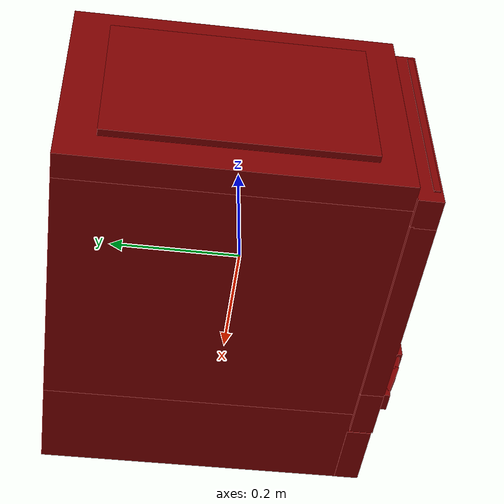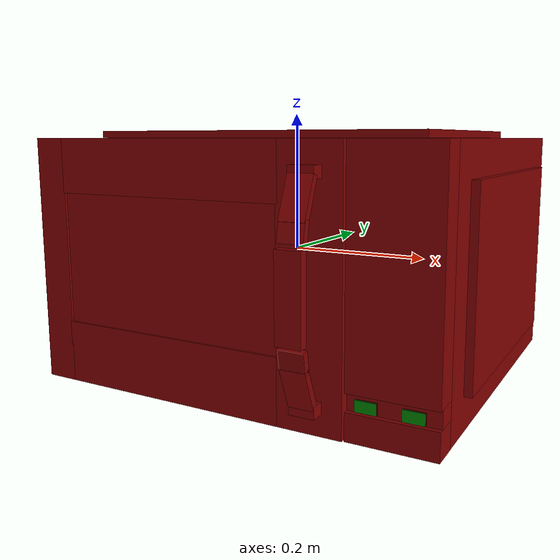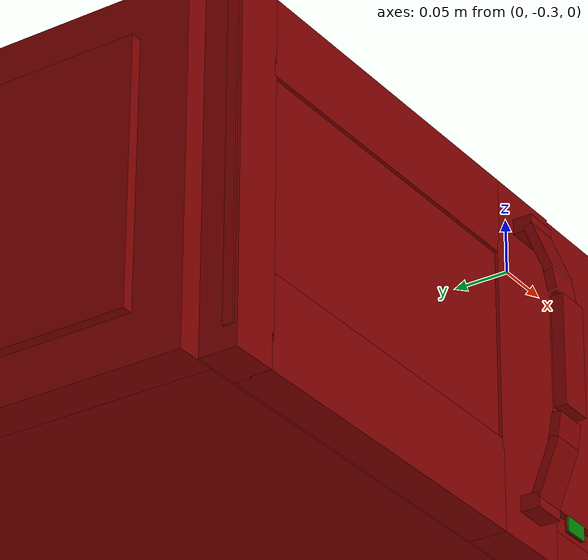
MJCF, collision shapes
<?xml version='1.0' encoding='UTF-8'?>
<mujoco model="model">
  <option timestep="0.002" gravity="0.0 0.0 -9.81"/>
  <compiler angle="radian"/>
  <asset>
    <mesh file="visuals/door.obj" name="door_vis"/>
    <mesh file="visuals/door_Clear.obj" name="door_Clear_vis"/>
    <mesh file="visuals/Body001.obj" name="Body001_vis"/>
    <mesh file="visuals/Button001.obj" name="Button001_vis"/>
    <mesh file="visuals/Button002.obj" name="Button002_vis"/>
    <mesh file="visuals/Disc001.obj" name="Disc001_vis"/>
    <texture file="visuals/T_BC001.png" name="Body001_material" type="2d"/>
    <material name="Body001_material" rgba="1 1 1 1.0" texture="Body001_material" shininess="1" specular="1"/>
    <texture file="visuals/T_BC001.png" name="door_material" type="2d"/>
    <material name="door_material" rgba="1 1 1 1.0" texture="door_material" shininess="1" specular="1"/>
    <texture file="visuals/T_BC001.png" name="door_Clear_material" type="2d"/>
    <material name="door_Clear_material" rgba="1 1 1 0.800000011920929" texture="door_Clear_material" shininess="0.5" specular="0.3103448502657381"/>
    <texture file="visuals/T_BC001.png" name="Button001_material" type="2d"/>
    <material name="Button001_material" rgba="1 1 1 1.0" texture="Button001_material" shininess="2" specular="2"/>
    <texture file="visuals/T_BC001.png" name="Button002_material" type="2d"/>
    <material name="Button002_material" rgba="1 1 1 1.0" texture="Button002_material" shininess="2" specular="2"/>
    <texture file="visuals/T_BC001.png" name="Disc001_material" type="2d"/>
    <material name="Disc001_material" rgba="1 1 1 1.0" texture="Disc001_material" shininess="0.5" specular="0.5"/>
  </asset>
  <default>
    <default class="visual">
      <geom conaffinity="0" contype="0" group="1" type="mesh"/>
    </default>
    <default class="collision">
      <geom group="0" rgba="0.5 0 0 0.5"/>
    </default>
    <default class="spawn">
      <geom group="0" rgba="1 1 1 0.5" contype="0" conaffinity="0"/>
      <site group="0" rgba="1 1 1 0.5"/>
    </default>
    <default class="region">
      <geom group="1" conaffinity="0" contype="0" rgba="0 1 0 0"/>
    </default>
  </default>
  <worldbody>
    <body>
      <body name="object">
        <geom class="collision" type="box" pos="0.2170172929763794 -0.2324933558702469 -0.12825287878513336" size="0.013190911151468754 0.0007031083223409951 0.00708899786695838" quat="1.0 0.0 0.0 0.0" name="start_button" rgba="0.0 0.5 0 0.5"/>
        <geom class="collision" type="box" pos="0.2730391323566437 -0.2324933558702469 -0.128305122256279" size="0.013190911151468754 0.0007031083223409951 0.00708899786695838" quat="1.0 0.0 0.0 0.0" name="stop_button" rgba="0.0 0.5 0 0.5"/>
        <geom class="collision" type="cylinder" pos="-0.06485994160175323 -0.003092189086601138 -0.13669924437999725" size="0.17225393652915955 0.0020208321511745453" quat="1.0 0.0 0.0 0.0" name="tray" rgba="0 1 0 0.5"/>
        <geom mesh="Body001_vis" type="mesh" solimp="0.998 0.998 0.001" solref="0.001 1" friction="0.95 0.3 0.1" class="visual" material="Body001_material"/>
        <geom class="collision" type="box" pos="-0.2810915410518646 0.04335606098175049 -0.004970035515725613" size="0.02083211950957775 0.23652443289756775 0.16998417675495148" quat="1.0 0.0 0.0 0.0"/>
        <geom class="collision" type="box" pos="0.2249555140733719 0.04335606098175049 -0.004970035515725613" size="0.07696817070245743 0.23652443289756775 0.16998417675495148" quat="1.0 0.0 0.0 0.0"/>
        <geom class="collision" type="box" pos="-0.056588929146528244 0.0433560386300087 0.14594468474388123" size="0.019069449976086617 0.23652443289756775 0.20546723902225494" quat="0.70710688829422 -4.7503014855010406e-08 0.7071066498756409 4.750300064415569e-08"/>
        <geom class="collision" type="box" pos="-0.056588925421237946 0.0433560386300087 -0.16193974018096924" size="0.013014478608965874 0.23652443289756775 0.20546723902225494" quat="0.70710688829422 -4.7503014855010406e-08 0.7071066498756409 4.750300064415569e-08"/>
        <geom class="collision" type="box" pos="-0.05658893287181854 0.23112283647060394 -0.009975007735192776" size="0.04875762015581131 0.1417888104915619 0.20546723902225494" quat="0.5000001788139343 0.4999999701976776 0.49999988079071045 0.4999999701976776"/>
        <geom class="collision" type="box" pos="-0.0026048514991998672 0.03995060920715332 0.17033837735652924" size="0.004890400916337967 0.1754380464553833 0.25124871730804443" quat="0.70710688829422 -4.7503014855010406e-08 0.7071066498756409 4.750300064415569e-08"/>
        <geom class="collision" type="box" pos="-0.3070313334465027 0.03993083909153938 -0.004857384599745274" size="0.00526044238358736 0.18542003631591797 0.1247829794883728" quat="1.0 -4.004205956609566e-15 -5.960462701182223e-08 -6.717943534795268e-08"/>
        <geom class="collision" type="box" pos="0.3070269525051117 0.03993083909153938 -0.004857384599745274" size="0.005264845676720142 0.18542003631591797 0.1247829794883728" quat="1.0 -4.004205956609566e-15 -5.960462701182223e-08 -6.717943534795268e-08"/>
        <geom class="collision" type="box" pos="0.24569323658943176 -0.21022270619869232 0.023446135222911835" size="0.05623043701052666 0.018931111320853233 0.14129340648651123" quat="1.0 0.0 0.0 0.0"/>
        <geom class="collision" type="box" pos="0.24569323658943176 -0.21022270619869232 -0.1576344519853592" size="0.05623043701052666 0.018931111320853233 0.017594337463378906" quat="1.0 0.0 0.0 0.0"/>
        <geom class="collision" type="box" pos="0.24569323658943176 -0.2079225480556488 -0.12884315848350525" size="0.05623043701052666 0.01457893755286932 0.011523762717843056" quat="1.0 0.0 0.0 0.0"/>
        <body name="door">
          <joint axis="0.0 0.0 1.0" pos="-0.283446729183197 -0.212793231010437 -0.005244613625109196" limited="true" name="microjoint" range="-1.5707963267948966 0.0" type="hinge" damping="1" frictionloss="1" armature=".01" stiffness="0.05"/>
          <geom mesh="door_vis" type="mesh" solimp="0.998 0.998 0.001" solref="0.001 1" friction="0.95 0.3 0.1" class="visual" material="door_material"/>
          <geom class="collision" type="box" pos="-0.06626242399215698 -0.2195109874010086 0.000930391252040863" size="0.004811004735529423 0.08865528553724289 0.16809029877185822" quat="0.5 0.5 0.5 0.4999999701976776"/>
          <geom class="collision" type="box" pos="-0.25767752528190613 -0.21287856996059418 -0.0052445982582867146" size="0.017992716282606125 0.16998417675495148 0.024036355316638947" quat="0.5000001192092896 0.5 0.4999999701976776 0.4999999403953552"/>
          <geom class="collision" type="box" pos="0.14439988136291504 -0.21287856996059418 -0.0052445996552705765" size="0.017992716282606125 0.16998417675495148 0.042897239327430725" quat="0.5000001192092896 0.5 0.4999999701976776 0.4999999403953552"/>
          <geom class="collision" type="box" pos="-0.06586045026779175 -0.21287858486175537 0.12792454659938812" size="0.017992716282606125 0.16998417675495148 0.03681502491235733" quat="7.472144858411411e-08 0.7071067094802856 0.7071068286895752 3.204871035222823e-08"/>
          <geom class="collision" type="box" pos="-0.06586045026779175 -0.21287858486175537 -0.1322387456893921" size="0.017992716282606125 0.16998417675495148 0.04299004003405571" quat="7.472144858411411e-08 0.7071067094802856 0.7071068286895752 3.204871035222823e-08"/>
          <geom class="collision" type="box" pos="0.14502070844173431 -0.239515021443367 0.12920789420604706" size="0.009858377277851105 0.007453942205756903 0.0165408905595541" quat="0.49999985098838806 0.5 -0.5000001788139343 -0.4999999403953552"/>
          <geom class="collision" type="box" pos="0.14502070844173431 -0.25534072518348694 0.10102148354053497" size="0.027371153235435486 0.004483749158680439 0.0165408905595541" quat="0.1339872181415558 0.6942963004112244 -0.13398760557174683 -0.6942963600158691"/>
          <geom class="collision" type="box" pos="0.14502070844173431 -0.2660098373889923 0.06678104400634766" size="0.013699657283723354 0.004483749158680439 0.0165408905595541" quat="0.06278831511735916 0.7043134570121765 -0.06278905272483826 -0.7043136358261108"/>
          <geom class="collision" type="box" pos="0.14502070844173431 -0.239515021443367 -0.14015492796897888" size="0.009858377277851105 0.007453942205756903 0.0165408905595541" quat="0.5000001192092896 -0.5 0.5 -0.49999988079071045"/>
          <geom class="collision" type="box" pos="0.14502070844173431 -0.25534072518348694 -0.11113370954990387" size="0.027371156960725784 0.004483749158680439 0.0165408905595541" quat="0.13398754596710205 -0.6942963004112244 0.1339874416589737 -0.6942963004112244"/>
          <geom class="collision" type="box" pos="0.14502070844173431 -0.2660098373889923 -0.07689327001571655" size="0.01369965635240078 0.004483748693019152 0.0165408905595541" quat="0.06278873980045319 -0.7043135762214661 0.06278879940509796 -0.7043135166168213"/>
          <geom class="collision" type="box" pos="0.14502070844173431 -0.2723143994808197 -0.005302442237734795" size="0.006134434603154659 0.05374417454004288 0.0165408905595541" quat="0.4999999403953552 0.4999999701976776 -0.5000001192092896 -0.4999999701976776" name="door_handle_main"/>
          <geom class="collision" type="box" pos="-0.06626242399215698 -0.2228299230337143 0.000930391252040863" size="0.004811004735529423 0.15572629868984222 0.2174280881881714" quat="0.5000001192092896 0.5 0.4999999701976776 0.4999999403953552" name="door_main"/>
          <body name="door_Clear">
            <geom mesh="door_Clear_vis" type="mesh" solimp="0.998 0.998 0.001" solref="0.001 1" friction="0.95 0.3 0.1" class="visual" material="door_Clear_material"/>
            <geom class="collision" type="box" pos="-0.06626242399215698 -0.2195109874010086 0.000930391252040863" size="0.004811004735529423 0.08865528553724289 0.16809029877185822" quat="0.5 0.5 0.5 0.4999999701976776"/>
          </body>
        </body>
        <body name="Button001">
          <joint axis="0.0 1.0 0.0" pos="0.2170172929763794 -0.2312849909067154 -0.12825287878513336" limited="true" name="Button001_joint" range="0.0 0.0025" type="slide" damping="1" frictionloss="1" armature=".01" stiffness="0.05"/>
          <geom mesh="Button001_vis" type="mesh" solimp="0.998 0.998 0.001" solref="0.001 1" friction="0.95 0.3 0.1" class="visual" material="Button001_material"/>
          <geom class="collision" type="box" pos="0.2170172929763794 -0.2301047444343567 -0.12825287878513336" size="0.013190911151468754 0.0007031083223409951 0.00708899786695838" quat="1.0 0.0 0.0 0.0"/>
        </body>
        <body name="Button002">
          <joint axis="0.0 1.0 0.0" pos="0.2730391323566437 -0.2312849909067154 -0.128305122256279" limited="true" name="Button002_joint" range="0.0 0.0025" type="slide" damping="1" frictionloss="1" armature=".01" stiffness="0.05"/>
          <geom mesh="Button002_vis" type="mesh" solimp="0.998 0.998 0.001" solref="0.001 1" friction="0.95 0.3 0.1" class="visual" material="Button002_material"/>
          <geom class="collision" type="box" pos="0.2730391323566437 -0.2301047444343567 -0.128305122256279" size="0.013190911151468754 0.0007031083223409951 0.00708899786695838" quat="1.0 0.0 0.0 0.0"/>
        </body>
        <body name="Disc001">
          <joint axis="0.0 0.0 1.0" pos="-0.06485994160175323 -0.003092189086601138 -0.14052611589431763" limited="false" name="Disc001_joint" range="0 360" type="hinge" damping="1" frictionloss="1" armature=".01" stiffness="0.05"/>
          <geom mesh="Disc001_vis" type="mesh" solimp="0.998 0.998 0.001" solref="0.001 1" friction="0.95 0.3 0.1" class="visual" material="Disc001_material"/>
          <geom class="collision" type="cylinder" pos="-0.06485994160175323 -0.003092189086601138 -0.1436263620853424" size="0.17225393652915955 0.002952506300061941" quat="1.0 0.0 0.0 0.0"/>
        </body>
        <geom class="region" name="reg_int" type="box" pos="-0.05545978248119354 -0.005378492176532745 -0.008351840078830719" size="0.1951920965909958 0.18022737449407578 0.12732658332586289"/>
        <geom class="region" name="reg_main" type="box" pos="-5.809317027427596e-09 0.02450425736606121 0.0" size="0.31329180097579956 0.2563762197494507 0.1762288043498993"/>
      <geom class="region" name="reg_tray" type="cylinder" pos="-0.06485994160175323 -0.003092189086601138 -0.00785183449089527" size="0.17225393652915955 0.12582657773792744"/></body>
    </body>
  </worldbody>
  <actuator>
    <motor name="microjoint_actuator" joint="microjoint" gear="10"/>
    <motor name="Button001_joint_actuator" joint="Button001_joint" gear="0.5"/>
    <motor name="Button002_joint_actuator" joint="Button002_joint" gear="0.5"/>
    <motor name="Disc001_joint_actuator" joint="Disc001_joint" gear="0.5"/>
  </actuator>
</mujoco>
